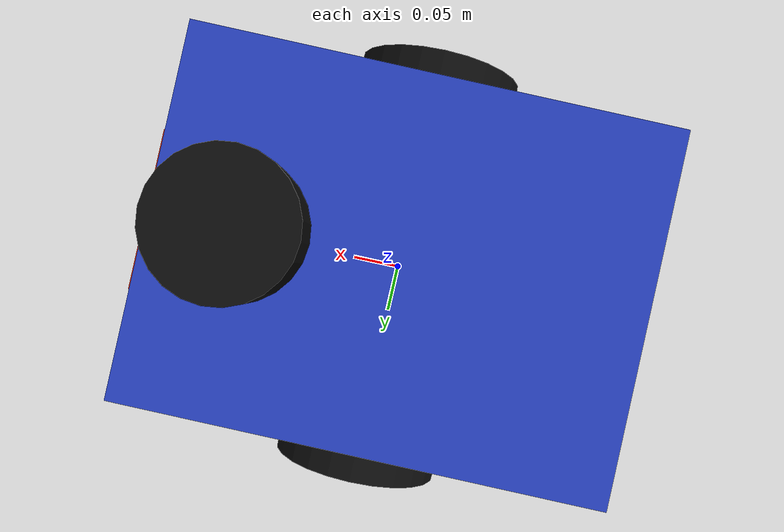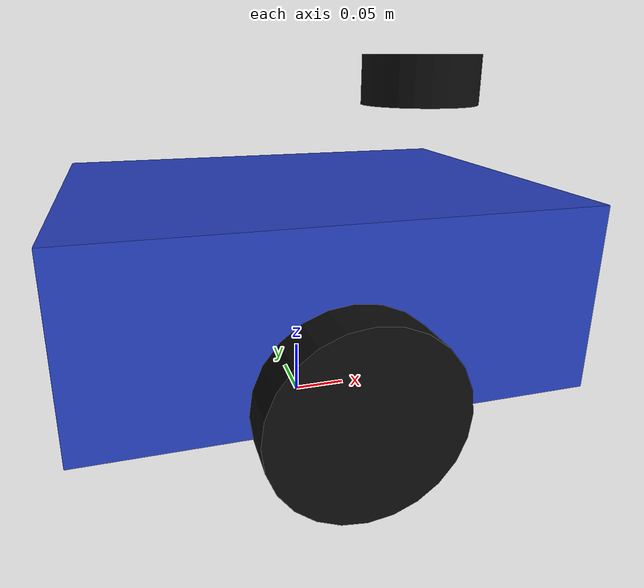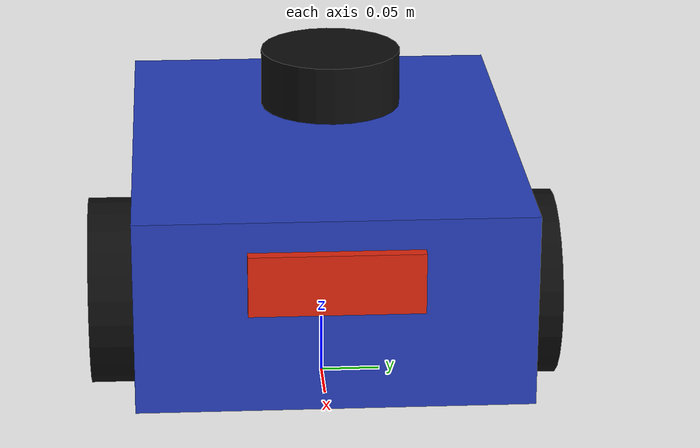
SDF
<?xml version="1.0"?>
<sdf version="1.8">
  <model name="fire_robot_3" canonical_link="base_link">

    <link name="base_link">
      <pose relative_to="__model__">0 0 0.14 0 0 0</pose>

      <inertial>
        <mass>8.0</mass>
        <inertia>
          <ixx>0.0813</ixx>
          <ixy>0.0</ixy>
          <ixz>0.0</ixz>
          <iyy>0.1307</iyy>
          <iyz>0.0</iyz>
          <izz>0.1867</izz>
        </inertia>
      </inertial>

      <collision name="base_collision">
        <geometry>
          <box>
            <size>0.42 0.32 0.16</size>
          </box>
        </geometry>
      </collision>

      <visual name="base_visual">
        <geometry>
          <box>
            <size>0.42 0.32 0.16</size>
          </box>
        </geometry>
        <material>
          <ambient>0.15 0.25 0.75 1</ambient>
          <diffuse>0.15 0.25 0.75 1</diffuse>
        </material>
      </visual>

      <visual name="front_marker">
        <pose>0.20 0 0.03 0 0 0</pose>
        <geometry>
          <box>
            <size>0.04 0.14 0.05</size>
          </box>
        </geometry>
        <material>
          <ambient>0.9 0.15 0.05 1</ambient>
          <diffuse>0.9 0.15 0.05 1</diffuse>
        </material>
      </visual>
    </link>

    <!-- FIRE_SWARM_LIDAR_BEGIN -->
    <link name="lidar_link">
      <pose relative_to="base_link">0.12 0 0.17 0 0 0</pose>

      <inertial>
        <mass>0.10</mass>
        <inertia>
          <ixx>0.00010</ixx>
          <ixy>0.0</ixy>
          <ixz>0.0</ixz>
          <iyy>0.00010</iyy>
          <iyz>0.0</iyz>
          <izz>0.00010</izz>
        </inertia>
      </inertial>

      <collision name="lidar_collision">
        <geometry>
          <cylinder>
            <radius>0.055</radius>
            <length>0.045</length>
          </cylinder>
        </geometry>
      </collision>

      <visual name="lidar_visual">
        <geometry>
          <cylinder>
            <radius>0.055</radius>
            <length>0.045</length>
          </cylinder>
        </geometry>
        <material>
          <ambient>0.05 0.05 0.05 1</ambient>
          <diffuse>0.05 0.05 0.05 1</diffuse>
        </material>
      </visual>

      <sensor name="lidar" type="gpu_lidar">
        <pose>0 0 0.03 0 0 0</pose>
        <topic>/robot3/scan</topic>
        <gz_frame_id>robot3/laser_frame</gz_frame_id>
        <update_rate>10</update_rate>
        <always_on>true</always_on>
        <visualize>true</visualize>

        <lidar>
          <scan>
            <horizontal>
              <samples>720</samples>
              <resolution>1</resolution>
              <min_angle>-3.14159265</min_angle>
              <max_angle>3.14159265</max_angle>
            </horizontal>
          </scan>

          <range>
            <min>0.12</min>
            <max>15.0</max>
            <resolution>0.01</resolution>
          </range>

          <noise>
            <type>gaussian</type>
            <mean>0.0</mean>
            <stddev>0.005</stddev>
          </noise>
        </lidar>
      </sensor>
    </link>

    <joint name="lidar_joint" type="fixed">
      <parent>base_link</parent>
      <child>lidar_link</child>
    </joint>
    <!-- FIRE_SWARM_LIDAR_END -->

    <link name="left_wheel">
      <pose relative_to="__model__">0 0.18 0.08 -1.5708 0 0</pose>

      <inertial>
        <mass>0.5</mass>
        <inertia>
          <ixx>0.00082</ixx>
          <ixy>0.0</ixy>
          <ixz>0.0</ixz>
          <iyy>0.00082</iyy>
          <iyz>0.0</iyz>
          <izz>0.00160</izz>
        </inertia>
      </inertial>

      <collision name="left_wheel_collision">
        <geometry>
          <cylinder>
            <radius>0.08</radius>
            <length>0.04</length>
          </cylinder>
        </geometry>
        <surface>
          <friction>
            <ode>
              <mu>1.5</mu>
              <mu2>1.5</mu2>
            </ode>
          </friction>
        </surface>
      </collision>

      <visual name="left_wheel_visual">
        <geometry>
          <cylinder>
            <radius>0.08</radius>
            <length>0.04</length>
          </cylinder>
        </geometry>
        <material>
          <ambient>0.05 0.05 0.05 1</ambient>
          <diffuse>0.05 0.05 0.05 1</diffuse>
        </material>
      </visual>
    </link>

    <link name="right_wheel">
      <pose relative_to="__model__">0 -0.18 0.08 -1.5708 0 0</pose>

      <inertial>
        <mass>0.5</mass>
        <inertia>
          <ixx>0.00082</ixx>
          <ixy>0.0</ixy>
          <ixz>0.0</ixz>
          <iyy>0.00082</iyy>
          <iyz>0.0</iyz>
          <izz>0.00160</izz>
        </inertia>
      </inertial>

      <collision name="right_wheel_collision">
        <geometry>
          <cylinder>
            <radius>0.08</radius>
            <length>0.04</length>
          </cylinder>
        </geometry>
        <surface>
          <friction>
            <ode>
              <mu>1.5</mu>
              <mu2>1.5</mu2>
            </ode>
          </friction>
        </surface>
      </collision>

      <visual name="right_wheel_visual">
        <geometry>
          <cylinder>
            <radius>0.08</radius>
            <length>0.04</length>
          </cylinder>
        </geometry>
        <material>
          <ambient>0.05 0.05 0.05 1</ambient>
          <diffuse>0.05 0.05 0.05 1</diffuse>
        </material>
      </visual>
    </link>

    <link name="caster">
      <pose relative_to="__model__">-0.15 0 0.04 0 0 0</pose>

      <inertial>
        <mass>0.15</mass>
        <inertia>
          <ixx>0.000096</ixx>
          <ixy>0.0</ixy>
          <ixz>0.0</ixz>
          <iyy>0.000096</iyy>
          <iyz>0.0</iyz>
          <izz>0.000096</izz>
        </inertia>
      </inertial>

      <collision name="caster_collision">
        <geometry>
          <sphere>
            <radius>0.04</radius>
          </sphere>
        </geometry>
        <surface>
          <friction>
            <ode>
              <mu>0.02</mu>
              <mu2>0.02</mu2>
            </ode>
          </friction>
        </surface>
      </collision>

      <visual name="caster_visual">
        <geometry>
          <sphere>
            <radius>0.04</radius>
          </sphere>
        </geometry>
        <material>
          <ambient>0.25 0.25 0.25 1</ambient>
          <diffuse>0.25 0.25 0.25 1</diffuse>
        </material>
      </visual>
    </link>

    <joint name="left_wheel_joint" type="revolute">
      <pose relative_to="left_wheel"/>
      <parent>base_link</parent>
      <child>left_wheel</child>
      <axis>
        <xyz expressed_in="__model__">0 1 0</xyz>
        <limit>
          <lower>-1.79769e+308</lower>
          <upper>1.79769e+308</upper>
        </limit>
      </axis>
    </joint>

    <joint name="right_wheel_joint" type="revolute">
      <pose relative_to="right_wheel"/>
      <parent>base_link</parent>
      <child>right_wheel</child>
      <axis>
        <xyz expressed_in="__model__">0 1 0</xyz>
        <limit>
          <lower>-1.79769e+308</lower>
          <upper>1.79769e+308</upper>
        </limit>
      </axis>
    </joint>

    <joint name="caster_joint" type="ball">
      <parent>base_link</parent>
      <child>caster</child>
    </joint>

    <plugin
      filename="gz-sim-diff-drive-system"
      name="gz::sim::systems::DiffDrive">
      <left_joint>left_wheel_joint</left_joint>
      <right_joint>right_wheel_joint</right_joint>
      <wheel_separation>0.36</wheel_separation>
      <wheel_radius>0.08</wheel_radius>
      <odom_publish_frequency>30</odom_publish_frequency>
      <frame_id>robot3/odom</frame_id>
      <child_frame_id>robot3/base_link</child_frame_id>
      <max_linear_velocity>0.8</max_linear_velocity>
      <max_angular_velocity>1.5</max_angular_velocity>
      <max_linear_acceleration>1.0</max_linear_acceleration>
      <max_angular_acceleration>2.0</max_angular_acceleration>
    </plugin>

  </model>
</sdf>
